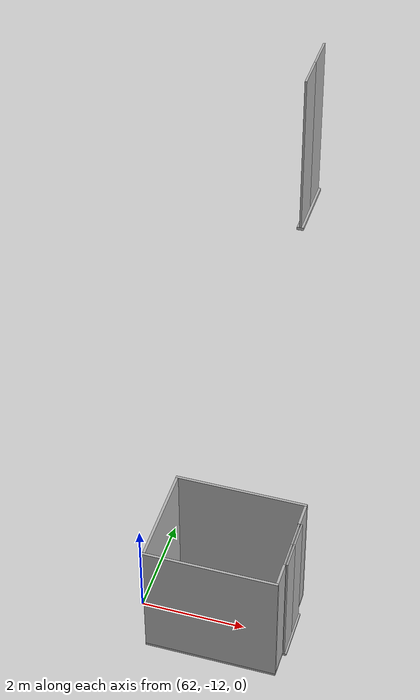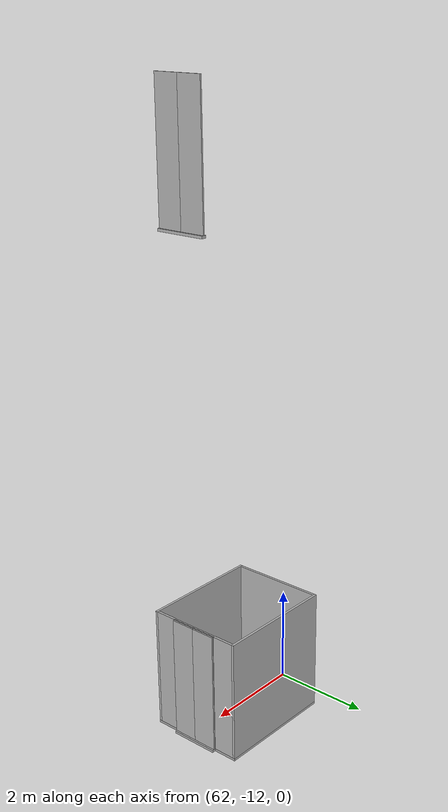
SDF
<sdf version="1.7">
 <world name="world">
  <include><uri>model://sun</uri></include>
  <model name="Lift3">
   <link name="platform">
    <inertial>
     <mass>1200</mass>
     <inertia><ixx>625.25</ixx><iyy>400.25000000000006</iyy><izz>1025.0</izz></inertia>
    </inertial>
    <visual name="floor">
     <pose>0 0 -0.025 0 0 0</pose>
     <geometry><box><size>2.5 2.0 0.05</size></box></geometry>
     <material>
      <ambient>0.5 0.5 0.5 1</ambient>
      <diffuse>0.7 0.7 0.7 1</diffuse>
      <specular>0.6 0.6 0.6 1</specular>
      <emissive>0.1 0.1 0.1 1</emissive>
     </material>
    </visual>
    <collision name="floor">
     <pose>0 0 -0.025 0 0 0</pose>
     <geometry><box><size>2.5 2.0 0.05</size></box></geometry>
     <surface><contact><collide_bitmask>0x01</collide_bitmask></contact></surface>
    </collision>
    <visual name="frontwall1">
     <pose>0.0 0.975 1.25 0 0 0</pose>
     <geometry><box><size>2.5 0.05 2.5</size></box></geometry>
     <material>
      <ambient>0.5 0.5 0.5 1</ambient>
      <diffuse>0.7 0.7 0.7 1</diffuse>
      <specular>0.6 0.6 0.6 1</specular>
      <emissive>0.1 0.1 0.1 1</emissive>
     </material>
    </visual>
    <collision name="frontwall1">
     <pose>0.0 0.975 1.25 0 0 0</pose>
     <geometry><box><size>2.5 0.05 2.5</size></box></geometry>
     <surface><contact><collide_bitmask>0x01</collide_bitmask></contact></surface>
    </collision>
    <visual name="backwall1">
     <pose>0.0 -0.975 1.25 0 0 0</pose>
     <geometry><box><size>2.5 0.05 2.5</size></box></geometry>
     <material>
      <ambient>0.5 0.5 0.5 1</ambient>
      <diffuse>0.7 0.7 0.7 1</diffuse>
      <specular>0.6 0.6 0.6 1</specular>
      <emissive>0.1 0.1 0.1 1</emissive>
     </material>
    </visual>
    <collision name="backwall1">
     <pose>0.0 -0.975 1.25 0 0 0</pose>
     <geometry><box><size>2.5 0.05 2.5</size></box></geometry>
     <surface><contact><collide_bitmask>0x01</collide_bitmask></contact></surface>
    </collision>
    <visual name="leftwall1">
     <pose>-1.225 0.0 1.25 0 0 1.5707963267948966</pose>
     <geometry><box><size>1.9 0.05 2.5</size></box></geometry>
     <material>
      <ambient>0.5 0.5 0.5 1</ambient>
      <diffuse>0.7 0.7 0.7 1</diffuse>
      <specular>0.6 0.6 0.6 1</specular>
      <emissive>0.1 0.1 0.1 1</emissive>
     </material>
    </visual>
    <collision name="leftwall1">
     <pose>-1.225 0.0 1.25 0 0 1.5707963267948966</pose>
     <geometry><box><size>1.9 0.05 2.5</size></box></geometry>
     <surface><contact><collide_bitmask>0x01</collide_bitmask></contact></surface>
    </collision>
    <visual name="rightwall1">
     <pose>1.225 -0.725 1.25 0 0 1.5707963267948966</pose>
     <geometry><box><size>0.44999999999999996 0.05 2.5</size></box></geometry>
     <material>
      <ambient>0.5 0.5 0.5 1</ambient>
      <diffuse>0.7 0.7 0.7 1</diffuse>
      <specular>0.6 0.6 0.6 1</specular>
      <emissive>0.1 0.1 0.1 1</emissive>
     </material>
    </visual>
    <collision name="rightwall1">
     <pose>1.225 -0.725 1.25 0 0 1.5707963267948966</pose>
     <geometry><box><size>0.44999999999999996 0.05 2.5</size></box></geometry>
     <surface><contact><collide_bitmask>0x01</collide_bitmask></contact></surface>
    </collision>
    <visual name="rightwall2">
     <pose>1.225 0.725 1.25 0 0 1.5707963267948966</pose>
     <geometry><box><size>0.44999999999999996 0.05 2.5</size></box></geometry>
     <material>
      <ambient>0.5 0.5 0.5 1</ambient>
      <diffuse>0.7 0.7 0.7 1</diffuse>
      <specular>0.6 0.6 0.6 1</specular>
      <emissive>0.1 0.1 0.1 1</emissive>
     </material>
    </visual>
    <collision name="rightwall2">
     <pose>1.225 0.725 1.25 0 0 1.5707963267948966</pose>
     <geometry><box><size>0.44999999999999996 0.05 2.5</size></box></geometry>
     <surface><contact><collide_bitmask>0x01</collide_bitmask></contact></surface>
    </collision>
   </link>
   <joint name="cabin_joint" type="prismatic">
    <parent>world</parent>
    <child>platform</child>
    <axis><xyz>0 0 1</xyz></axis>
   </joint>
   <model name="CabinDoor_Lift3_door">
    <pose>1.225 0.0 0 0 0 1.5708</pose>
    <link name="right_door">
     <pose>0.25 0 1.25 0 0 0</pose>
     <visual name="right_door_visual">
      <geometry><box><size>0.5 0.03 2.5</size></box></geometry>
      <material>
       <ambient>0.5 0.5 0.5 1</ambient>
       <diffuse>0.7 0.7 0.7 1</diffuse>
       <specular>0.6 0.6 0.6 1</specular>
       <emissive>0.1 0.1 0.1 1</emissive>
      </material>
     </visual>
     <collision name="right_door_collision">
      <geometry><box><size>0.5 0.03 2.5</size></box></geometry>
      <surface><contact><collide_bitmask>0x02</collide_bitmask></contact></surface>
     </collision>
    </link>
    <joint name="right_joint" type="prismatic">
     <parent>platform</parent>
     <child>right_door</child>
     <axis><xyz>1 0 0</xyz><limit><lower>0</lower><upper>0.5</upper></limit></axis>
    </joint>
    <link name="left_door">
     <pose>-0.25 0 1.25 0 0 0</pose>
     <visual name="left_door_visual">
      <geometry><box><size>0.5 0.03 2.5</size></box></geometry>
      <material>
       <ambient>0.5 0.5 0.5 1</ambient>
       <diffuse>0.7 0.7 0.7 1</diffuse>
       <specular>0.6 0.6 0.6 1</specular>
       <emissive>0.1 0.1 0.1 1</emissive>
      </material>
     </visual>
     <collision name="left_door_collision">
      <geometry><box><size>0.5 0.03 2.5</size></box></geometry>
      <surface><contact><collide_bitmask>0x02</collide_bitmask></contact></surface>
     </collision>
    </link>
    <joint name="left_joint" type="prismatic">
     <parent>platform</parent>
     <child>left_door</child>
     <axis><xyz>1 0 0</xyz><limit><lower>-0.5</lower><upper>0</upper></limit></axis>
    </joint>
    <plugin name="door" filename="libdoor.so">
     <v_max_door>0.3</v_max_door>
     <a_max_door>0.2</a_max_door>
     <a_nom_door>0.1</a_nom_door>
     <dx_min_door>0.0001</dx_min_door>
     <f_max_door>35.0</f_max_door>
     <door left_joint_name="left_joint" name="CabinDoor_Lift3_door" right_joint_name="right_joint" type="DoubleSlidingDoor"/>
    </plugin>
   </model>
   <plugin name="lift" filename="liblift.so">
    <lift_name>Lift3</lift_name>
    <floor name="L1" elevation="0.0">
     <door_pair cabin_door="CabinDoor_Lift3_door" shaft_door="ShaftDoor_Lift3_L1_door"/>
    </floor>
    <floor name="L2" elevation="10.0">
     <door_pair cabin_door="CabinDoor_Lift3_door" shaft_door="ShaftDoor_Lift3_L2_door"/>
    </floor>
    <initial_floor>L1</initial_floor>
    <v_max_cabin>2.0</v_max_cabin>
    <a_max_cabin>1.2</a_max_cabin>
    <a_nom_cabin>1.0</a_nom_cabin>
    <dx_min_cabin>0.001</dx_min_cabin>
    <f_max_cabin>25323.0</f_max_cabin>
    <cabin_joint_name>cabin_joint</cabin_joint_name>
   </plugin>
   <pose>63.6 -11.875 0 0 0 0.0</pose>
  </model>
  <model name="ShaftDoor_guest_lift1_L1_door">
   <pose>64.875 -11.875 0.0 0 0 1.5708</pose>
   <link name="right_door">
    <pose>0.25 0 1.25 0 0 0</pose>
    <visual name="right_door_visual">
     <geometry><box><size>0.5 0.03 2.5</size></box></geometry>
     <material>
      <ambient>0.5 0.5 0.5 1</ambient>
      <diffuse>0.7 0.7 0.7 1</diffuse>
      <specular>0.6 0.6 0.6 1</specular>
      <emissive>0.1 0.1 0.1 1</emissive>
     </material>
    </visual>
    <collision name="right_door_collision">
     <geometry><box><size>0.5 0.03 2.5</size></box></geometry>
     <surface><contact><collide_bitmask>0x02</collide_bitmask></contact></surface>
    </collision>
   </link>
   <joint name="right_joint" type="prismatic">
    <parent>world</parent>
    <child>right_door</child>
    <axis><xyz>1 0 0</xyz><limit><lower>0</lower><upper>0.5</upper></limit></axis>
   </joint>
   <link name="left_door">
    <pose>-0.25 0 1.25 0 0 0</pose>
    <visual name="left_door_visual">
     <geometry><box><size>0.5 0.03 2.5</size></box></geometry>
     <material>
      <ambient>0.5 0.5 0.5 1</ambient>
      <diffuse>0.7 0.7 0.7 1</diffuse>
      <specular>0.6 0.6 0.6 1</specular>
      <emissive>0.1 0.1 0.1 1</emissive>
     </material>
    </visual>
    <collision name="left_door_collision">
     <geometry><box><size>0.5 0.03 2.5</size></box></geometry>
     <surface><contact><collide_bitmask>0x02</collide_bitmask></contact></surface>
    </collision>
   </link>
   <joint name="left_joint" type="prismatic">
    <parent>world</parent>
    <child>left_door</child>
    <axis><xyz>1 0 0</xyz><limit><lower>-0.5</lower><upper>0</upper></limit></axis>
   </joint>
   <link name="ramp">
    <pose>0 0 -0.025 0 0 0</pose>
    <visual name="ramp_visual">
     <geometry><box><size>1.0 0.1 0.05</size></box></geometry>
     <material>
      <ambient>0.5 0.5 0.5 1</ambient>
      <diffuse>0.7 0.7 0.7 1</diffuse>
      <specular>0.6 0.6 0.6 1</specular>
      <emissive>0.1 0.1 0.1 1</emissive>
     </material>
    </visual>
    <collision name="ramp_collision">
     <geometry><box><size>1.0 0.1 0.05</size></box></geometry>
     <surface><contact><collide_bitmask>0x02</collide_bitmask></contact></surface>
    </collision>
   </link>
   <joint name="ramp_joint" type="fixed"><parent>world</parent><child>ramp</child></joint>
   <plugin name="door" filename="libdoor.so">
    <v_max_door>0.3</v_max_door>
    <a_max_door>0.2</a_max_door>
    <a_nom_door>0.1</a_nom_door>
    <dx_min_door>0.0001</dx_min_door>
    <f_max_door>35.0</f_max_door>
    <door left_joint_name="left_joint" name="ShaftDoor_guest_lift1_L1_door" right_joint_name="right_joint" type="DoubleSlidingDoor"/>
   </plugin>
  </model>
  <model name="ShaftDoor_guest_lift1_L2_door">
   <pose>64.875 -11.875 10.0 0 0 1.5708</pose>
   <link name="right_door">
    <pose>0.25 0 1.25 0 0 0</pose>
    <visual name="right_door_visual">
     <geometry><box><size>0.5 0.03 2.5</size></box></geometry>
     <material>
      <ambient>0.5 0.5 0.5 1</ambient>
      <diffuse>0.7 0.7 0.7 1</diffuse>
      <specular>0.6 0.6 0.6 1</specular>
      <emissive>0.1 0.1 0.1 1</emissive>
     </material>
    </visual>
    <collision name="right_door_collision">
     <geometry><box><size>0.5 0.03 2.5</size></box></geometry>
     <surface><contact><collide_bitmask>0x02</collide_bitmask></contact></surface>
    </collision>
   </link>
   <joint name="right_joint" type="prismatic">
    <parent>world</parent>
    <child>right_door</child>
    <axis><xyz>1 0 0</xyz><limit><lower>0</lower><upper>0.5</upper></limit></axis>
   </joint>
   <link name="left_door">
    <pose>-0.25 0 1.25 0 0 0</pose>
    <visual name="left_door_visual">
     <geometry><box><size>0.5 0.03 2.5</size></box></geometry>
     <material>
      <ambient>0.5 0.5 0.5 1</ambient>
      <diffuse>0.7 0.7 0.7 1</diffuse>
      <specular>0.6 0.6 0.6 1</specular>
      <emissive>0.1 0.1 0.1 1</emissive>
     </material>
    </visual>
    <collision name="left_door_collision">
     <geometry><box><size>0.5 0.03 2.5</size></box></geometry>
     <surface><contact><collide_bitmask>0x02</collide_bitmask></contact></surface>
    </collision>
   </link>
   <joint name="left_joint" type="prismatic">
    <parent>world</parent>
    <child>left_door</child>
    <axis><xyz>1 0 0</xyz><limit><lower>-0.5</lower><upper>0</upper></limit></axis>
   </joint>
   <link name="ramp">
    <pose>0 0 -0.025 0 0 0</pose>
    <visual name="ramp_visual">
     <geometry><box><size>1.0 0.1 0.05</size></box></geometry>
     <material>
      <ambient>0.5 0.5 0.5 1</ambient>
      <diffuse>0.7 0.7 0.7 1</diffuse>
      <specular>0.6 0.6 0.6 1</specular>
      <emissive>0.1 0.1 0.1 1</emissive>
     </material>
    </visual>
    <collision name="ramp_collision">
     <geometry><box><size>1.0 0.1 0.05</size></box></geometry>
     <surface><contact><collide_bitmask>0x02</collide_bitmask></contact></surface>
    </collision>
   </link>
   <joint name="ramp_joint" type="fixed"><parent>world</parent><child>ramp</child></joint>
   <plugin name="door" filename="libdoor.so">
    <v_max_door>0.3</v_max_door>
    <a_max_door>0.2</a_max_door>
    <a_nom_door>0.1</a_nom_door>
    <dx_min_door>0.0001</dx_min_door>
    <f_max_door>35.0</f_max_door>
    <door left_joint_name="left_joint" name="ShaftDoor_guest_lift1_L2_door" right_joint_name="right_joint" type="DoubleSlidingDoor"/>
   </plugin>
  </model>
 </world>
</sdf>
